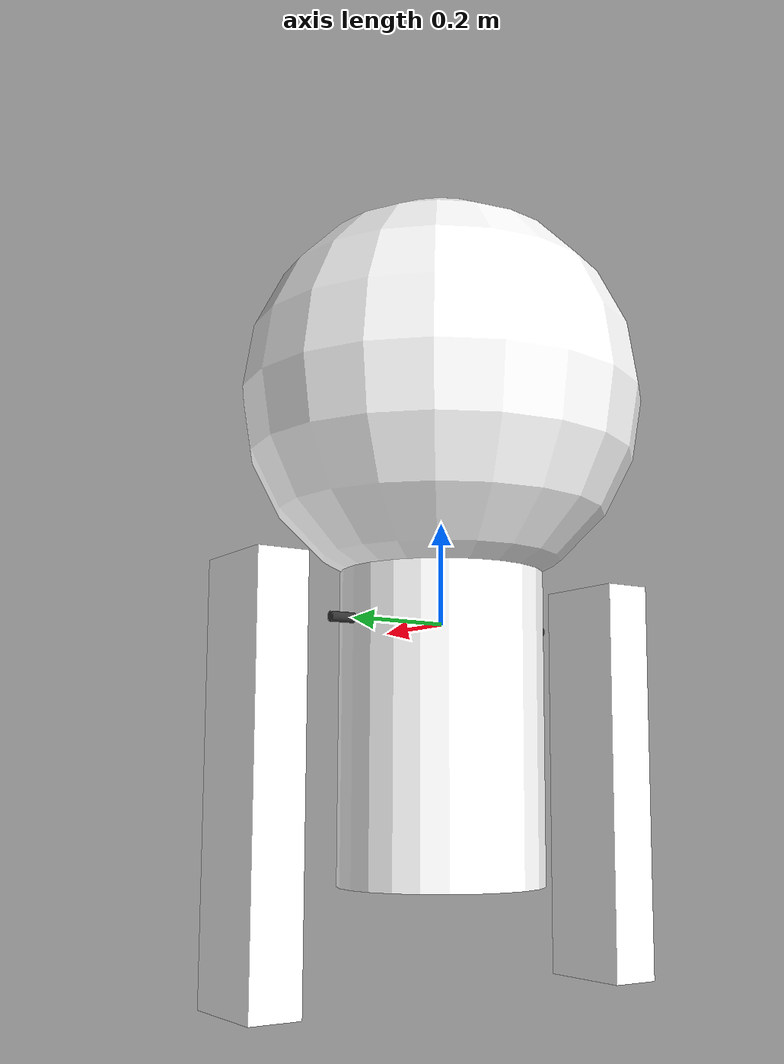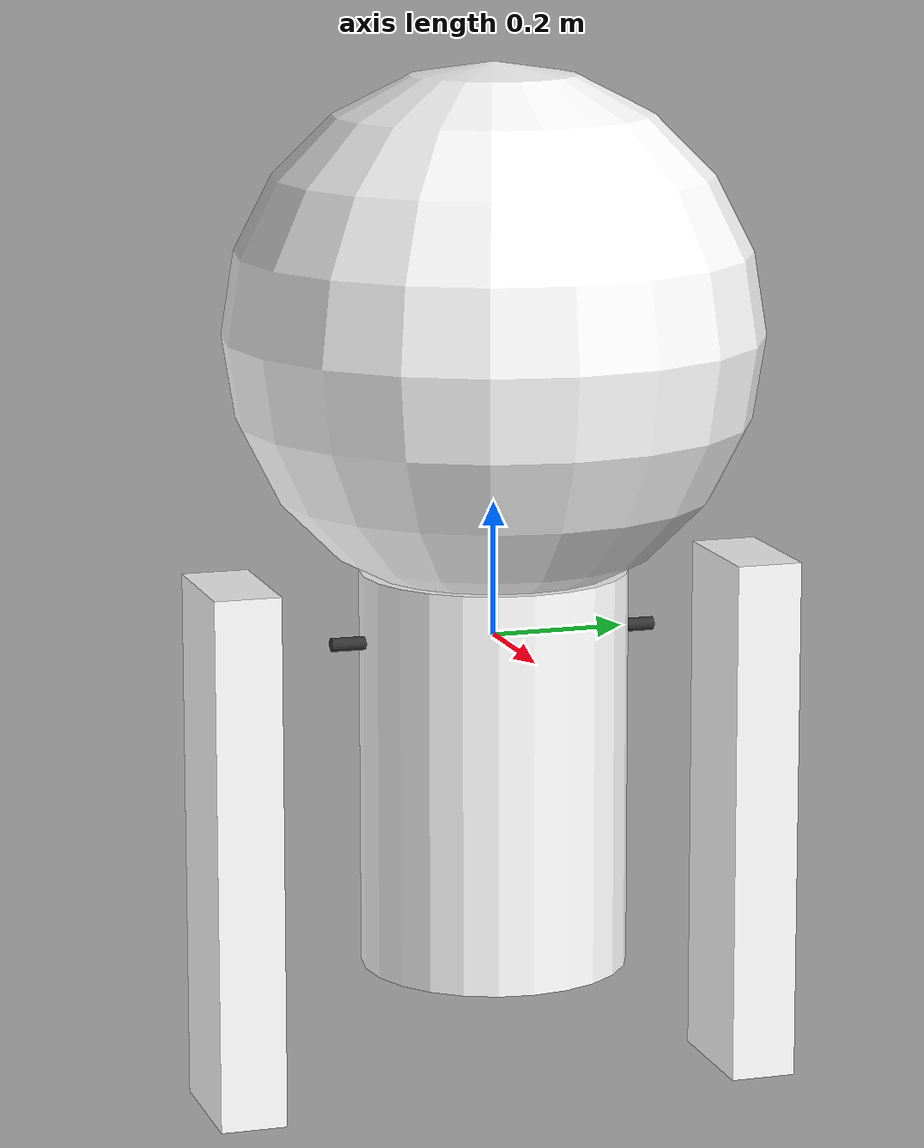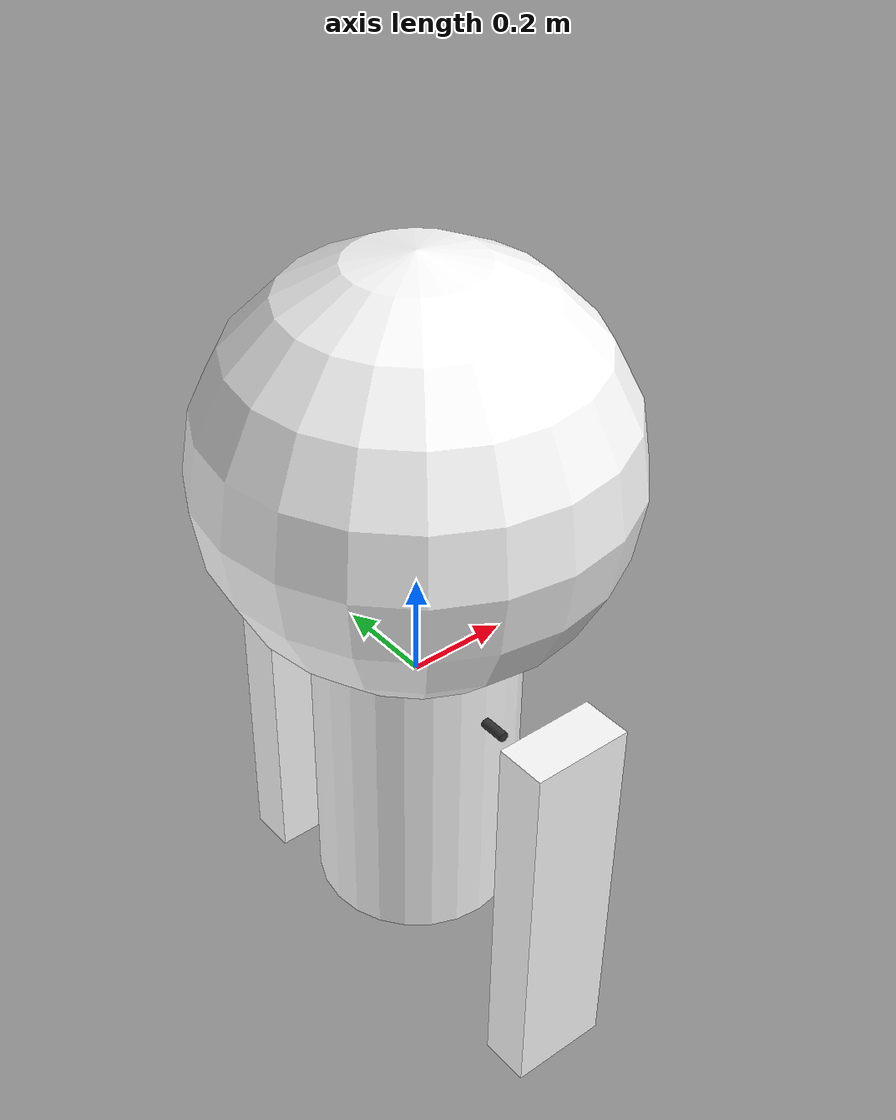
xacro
<?xml version="1.0"?>
<robot xmlns:xacro="http://www.ros.org/wiki/xacro" name="r2d2">

  <!-- Materials (global) -->
  <material name="gray"><color rgba="0.2 0.2 0.2 1"/></material>
  <material name="white"><color rgba="1 1 1 1"/></material>
  <material name="blue"><color rgba="0 0 1 1"/></material>

  <!-- Common properties -->
  <xacro:property name="cc_mu" value="0"/>
  <xacro:property name="cc_kp" value="1000.0"/>
  <xacro:property name="cc_kd" value="1.0"/>

  <xacro:property name="mass" value="1"/>
  <xacro:property name="I" value="1e-3"/>

  <xacro:property name="axis_radius" value="0.01"/>
  <xacro:property name="axis_length" value="0.5"/>
  <xacro:property name="axis_rpy" value="1.57 0 0"/>

  <xacro:property name="leg_size" value="0.20 0.10 0.8"/>
  <xacro:property name="leg_origin" value="0 0 -0.3"/>
  <xacro:property name="leg_y" value="0.40"/>

  <xacro:property name="body_radius" value="0.20"/>
  <xacro:property name="body_length" value="0.6"/>
  <xacro:property name="body_visual_origin" value="0 0 -0.2"/>
  <xacro:property name="body_collision_origin" value="0 0 0.2"/>

  <xacro:property name="head_radius" value="0.4"/>

  <xacro:property name="rod_radius" value="0.02"/>
  <xacro:property name="rod_length" value="0.2"/>
  <xacro:property name="rod_visual_origin" value="0 0 -0.1"/>

  <xacro:property name="box_size" value="0.05 0.05 0.05"/>

  <!-- Reusable snippets -->
  <xacro:macro name="contact_coefficients" params="">
    <contact_coefficients mu="${cc_mu}" kp="${cc_kp}" kd="${cc_kd}"/>
  </xacro:macro>

  <xacro:macro name="unit_inertial" params="">
    <inertial>
      <mass value="${mass}"/>
      <inertia ixx="${I}" ixy="0" ixz="0" iyy="${I}" iyz="0" izz="${I}"/>
      <origin/>
    </inertial>
  </xacro:macro>

  <!-- leg(link + fixed joint) 반복 구조 -->
  <xacro:macro name="leg" params="name y">
    <link name="${name}">
      <xacro:unit_inertial/>
      <visual>
        <origin xyz="${leg_origin}" rpy="0 0 0"/>
        <geometry><box size="${leg_size}"/></geometry>
        <material name="white"/>
      </visual>
      <collision>
        <origin xyz="${leg_origin}" rpy="0 0 0"/>
        <geometry><box size="${leg_size}"/></geometry>
        <xacro:contact_coefficients/>
      </collision>
    </link>

    <joint name="${name}connect" type="fixed">
      <origin xyz="0 ${y} 0" rpy="0 0 0"/>
      <parent link="axis"/>
      <child link="${name}"/>
    </joint>
  </xacro:macro>

  <!-- Model -->
  <link name="axis">
    <visual>
      <origin xyz="0 0 0" rpy="${axis_rpy}"/>
      <geometry><cylinder radius="${axis_radius}" length="${axis_length}"/></geometry>
      <material name="gray"/>
    </visual>
    <collision>
      <origin xyz="0 0 0" rpy="${axis_rpy}"/>
      <geometry><cylinder radius="${axis_radius}" length="${axis_length}"/></geometry>
      <xacro:contact_coefficients/>
    </collision>
  </link>

  <xacro:leg name="leg1" y="${leg_y}"/>
  <xacro:leg name="leg2" y="-${leg_y}"/>

  <link name="body">
    <xacro:unit_inertial/>
    <visual>
      <origin xyz="${body_visual_origin}" rpy="0 0 0"/>
      <geometry><cylinder radius="${body_radius}" length="${body_length}"/></geometry>
      <material name="white"/>
    </visual>
    <collision>
      <origin xyz="${body_collision_origin}" rpy="0 0 0"/>
      <geometry><cylinder radius="${body_radius}" length="${body_length}"/></geometry>
      <xacro:contact_coefficients/>
    </collision>
  </link>

  <joint name="tilt" type="revolute">
    <parent link="axis"/>
    <child link="body"/>
    <origin xyz="0 0 0" rpy="0 0 0"/>
    <axis xyz="0 1 0"/>
    <limit upper="0" lower="-0.5" effort="10" velocity="10"/>
  </joint>

  <link name="head">
    <xacro:unit_inertial/>
    <visual>
      <origin xyz="0 0 0.35" rpy="0 0 0"/>
      <geometry><sphere radius="${head_radius}"/></geometry>
      <material name="white"/>
    </visual>
    <collision>
      <origin xyz="0 0 0" rpy="0 0 0"/>
      <geometry><sphere radius="${head_radius}"/></geometry>
      <xacro:contact_coefficients/>
    </collision>
  </link>

  <joint name="swivel" type="continuous">
    <origin xyz="0 0 0.1" rpy="0 0 0"/>
    <axis xyz="0 0 1"/>
    <parent link="body"/>
    <child link="head"/>
  </joint>

  <link name="rod">
    <xacro:unit_inertial/>
    <visual>
      <origin xyz="${rod_visual_origin}" rpy="0 0 0"/>
      <geometry><cylinder radius="${rod_radius}" length="${rod_length}"/></geometry>
      <material name="gray"/>
    </visual>
    <collision>
      <origin xyz="0 0 0" rpy="0 0 0"/>
      <geometry><cylinder radius="${rod_radius}" length="${rod_length}"/></geometry>
      <xacro:contact_coefficients/>
    </collision>
  </link>

  <joint name="periscope" type="prismatic">
    <origin xyz="0.12 0 0.15" rpy="0 0 0"/>
    <axis xyz="0 0 1"/>
    <limit upper="0" lower="-0.5" effort="10" velocity="10"/>
    <parent link="head"/>
    <child link="rod"/>
  </joint>

  <link name="box">
    <xacro:unit_inertial/>
    <visual>
      <origin xyz="0 0 0" rpy="0 0 0"/>
      <geometry><box size="${box_size}"/></geometry>
      <material name="blue"/>
    </visual>
    <collision>
      <origin xyz="0 0 0" rpy="0 0 0"/>
      <geometry><box size="${box_size}"/></geometry>
      <xacro:contact_coefficients/>
    </collision>
  </link>

  <joint name="boxconnect" type="fixed">
    <origin xyz="0 0 0" rpy="0 0 0"/>
    <parent link="rod"/>
    <child link="box"/>
  </joint>

</robot>
